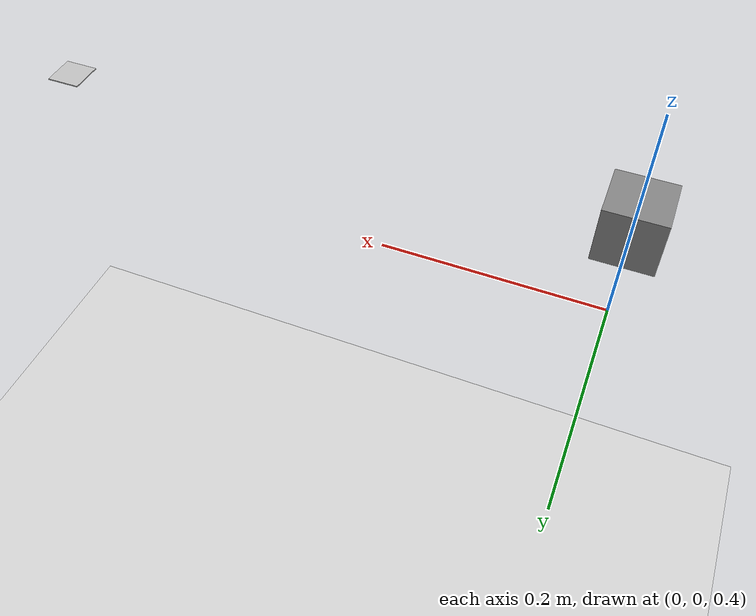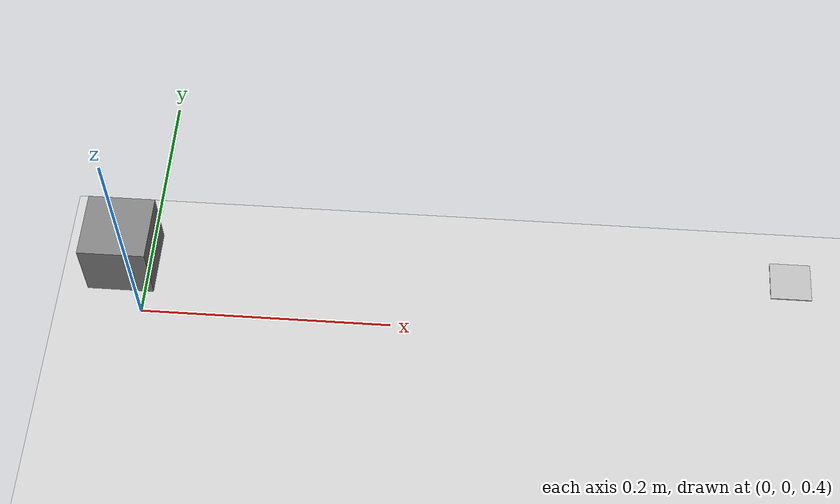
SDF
<?xml version="1.0"?>
<sdf version="1.6">
  <world name="aruco_tracking_world">

    <!-- Physics -->
    <physics type="ode">
      <real_time_update_rate>1000.0</real_time_update_rate>
      <max_step_size>0.001</max_step_size>
      <real_time_factor>1</real_time_factor>
    </physics>

    <!-- Scene -->
    <scene>
      <ambient>0.4 0.4 0.4 1</ambient>
      <background>0.7 0.7 0.7 1</background>
      <shadows>true</shadows>
    </scene>

    <!-- Sun -->
    <include>
      <uri>model://sun</uri>
    </include>

    <!-- Ground Plane -->
    <include>
      <uri>model://ground_plane</uri>
    </include>

    <!-- ArUco Marker - positioned in front of camera -->
    <include>
      <uri>model://aruco_marker_4x4</uri>
      <name>aruco_marker</name>
      <pose>0.5 0 0.5 0 0 3.14159</pose>
    </include>

    <!-- Camera with ROS2 plugin -->
    <model name="camera">
      <static>true</static>
      <pose>0 0 0.5 0 0 0</pose>

      <link name="camera_link">
        <visual name="visual">
          <geometry>
            <box>
              <size>0.05 0.05 0.05</size>
            </box>
          </geometry>
          <material>
            <ambient>0.5 0.5 0.5 1</ambient>
            <diffuse>0.5 0.5 0.5 1</diffuse>
          </material>
        </visual>

        <collision name="collision">
          <geometry>
            <box>
              <size>0.05 0.05 0.05</size>
            </box>
          </geometry>
        </collision>

        <sensor name="camera" type="camera">
          <camera>
            <horizontal_fov>1.047</horizontal_fov>
            <image>
              <width>640</width>
              <height>480</height>
              <format>R8G8B8</format>
            </image>
            <clip>
              <near>0.01</near>
              <far>100</far>
            </clip>
            <noise>
              <type>gaussian</type>
              <mean>0.0</mean>
              <stddev>0.007</stddev>
            </noise>
          </camera>
          <always_on>1</always_on>
          <update_rate>30</update_rate>
          <visualize>true</visualize>

          <plugin name="camera_controller" filename="libgazebo_ros_camera.so">
            <ros>
              <namespace>/camera</namespace>
              <remapping>image_raw:=image_raw</remapping>
              <remapping>camera_info:=camera_info</remapping>
            </ros>
            <camera_name>camera</camera_name>
            <frame_name>camera_link_optical</frame_name>
            <hack_baseline>0.07</hack_baseline>
          </plugin>
        </sensor>
      </link>
    </model>

    <!-- Static transform for camera optical frame -->
    <plugin name="gazebo_ros_state" filename="libgazebo_ros_state.so">
      <ros>
        <namespace>/gazebo</namespace>
      </ros>
      <update_rate>10.0</update_rate>
    </plugin>

    <!-- GUI -->
    <gui fullscreen='0'>
      <camera name='user_camera'>
        <pose>-1.5 0 1.5 0 0.5 0</pose>
        <view_controller>orbit</view_controller>
      </camera>
    </gui>

  </world>
</sdf>

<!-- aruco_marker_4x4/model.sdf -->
<sdf version="1.6">
  <model name="aruco_marker_4x4">
    <static>true</static>
    <link name="link">
      <pose>0 0 0 0 0 0</pose>
      <visual name="visual">
        <geometry>
          <box>
            <size>0.03 0.03 0.001</size>
          </box>
        </geometry>
        <material>
          <script>
            <uri>model://aruco_marker_4x4/materials</uri>
            <name>ArUco/Marker</name>
          </script>
        </material>
      </visual>
      <collision name="collision">
        <geometry>
          <box>
            <size>0.03 0.03 0.001</size>
          </box>
        </geometry>
      </collision>
      <inertial>
        <mass>0.01</mass>
        <inertia>
          <ixx>0.000001</ixx>
          <iyy>0.000001</iyy>
          <izz>0.000001</izz>
        </inertia>
      </inertial>
    </link>
  </model>
</sdf>
